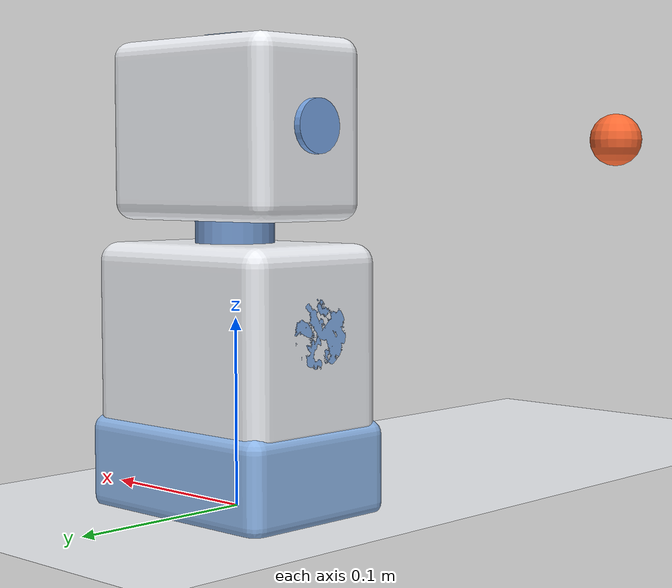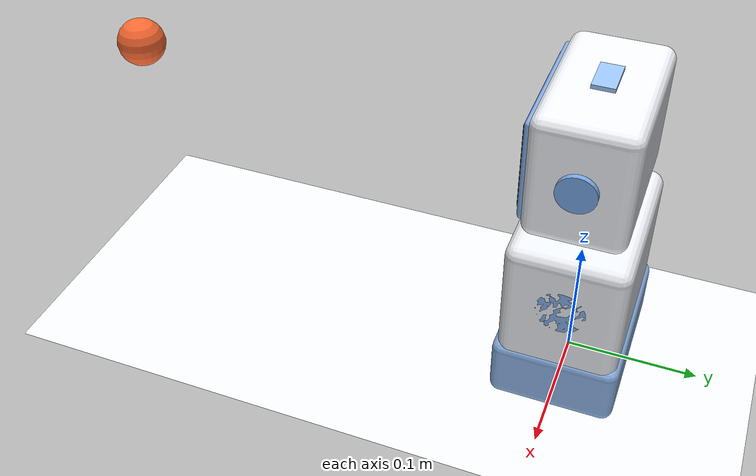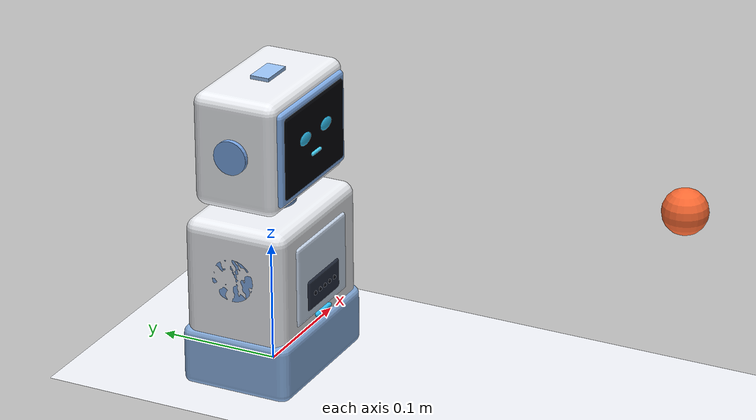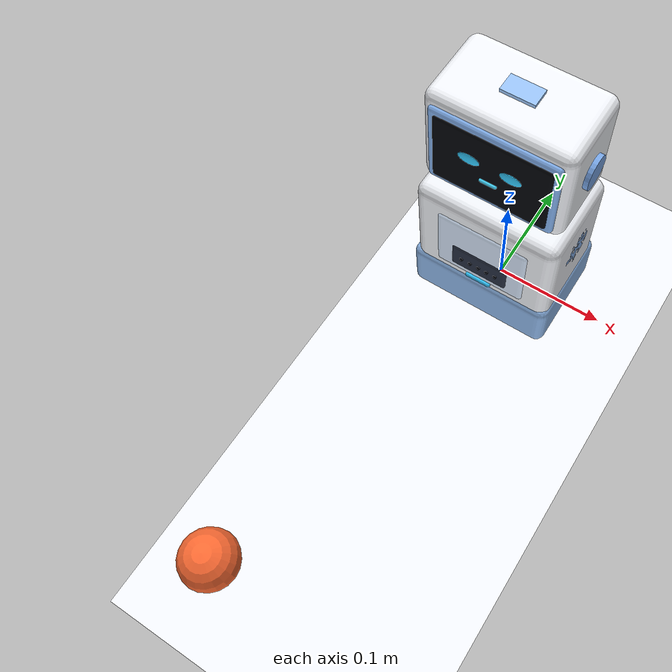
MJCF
<mujoco model="deskro_v1_cute_square_tv_visible_neck">
  <compiler angle="degree" autolimits="true" meshdir="assets"/>
  <option timestep="0.005" gravity="0 0 -9.81" integrator="implicitfast"/>

  <visual>
    <global azimuth="145" elevation="-14"/>
    <quality shadowsize="2048"/>
    <headlight ambient="0.38 0.39 0.42"
               diffuse="0.76 0.77 0.80"
               specular="0.24 0.24 0.24"/>
  </visual>

  <default>
    <joint damping="0.18" armature="0.003" frictionloss="0.003"/>
    <geom density="550" friction="0.8 0.1 0.1"
          contype="1" conaffinity="1"/>
  </default>

  <asset>
    <mesh name="base_square_mesh" file="base_square.obj"/>
    <mesh name="base_front_square_mesh" file="base_front_square.obj"/>
    <mesh name="torso_square_mesh" file="torso_square.obj"/>
    <mesh name="torso_panel_square_mesh" file="torso_panel_square.obj"/>
    <mesh name="speaker_square_mesh" file="speaker_square.obj"/>
    <mesh name="head_square_mesh" file="head_square.obj"/>
    <mesh name="bezel_square_mesh" file="bezel_square.obj"/>
    <mesh name="screen_square_mesh" file="screen_square.obj"/>
  </asset>

  <worldbody>
    <light name="key" pos="1.2 -1.4 2.2" dir="-0.5 0.6 -1"
           diffuse="0.90 0.89 0.88"/>
    <light name="fill" pos="-1 0.5 1.5" dir="0.5 -0.2 -1"
           diffuse="0.40 0.44 0.50"/>
    <geom name="floor" type="plane" size="2 2 0.05"
          rgba="0.95 0.96 0.98 1"/>

    <!-- Orange sphere: virtual user / target direction. -->
    <body name="target_marker" mocap="true" pos="0 -0.35 0.20">
      <geom name="target_geom" type="sphere" size="0.018"
            rgba="1 0.42 0.20 0.92"
            contype="0" conaffinity="0"/>
    </body>

    <body name="base" pos="0 0 0.022">
      <!-- Invisible collision/mass geometry. -->
      <geom name="base_geom" type="box"
            size="0.062 0.043 0.022"
            rgba="0 0 0 0"/>

      <!-- Stable rounded desk base. -->
      <geom name="base_shell_visual" type="mesh"
            mesh="base_square_mesh"
            rgba="0.56 0.72 0.92 1"
            contype="0" conaffinity="0" mass="0.000001"/>
      <geom name="base_front_visual" type="mesh"
            mesh="base_front_square_mesh"
            pos="0 -0.037 -0.004"
            rgba="0.44 0.62 0.86 1"
            contype="0" conaffinity="0" mass="0.000001"/>

      <body name="torso" pos="0 0 0.070">
        <!-- Original simple physics shell retained. -->
        <geom name="torso_geom" type="box"
              size="0.058 0.038 0.055"
              rgba="0 0 0 0"/>

        <!-- Compact rounded retro body. -->
        <geom name="torso_shell_visual" type="mesh"
              mesh="torso_square_mesh"
              pos="0 0 -0.004"
              rgba="0.94 0.95 0.97 1"
              contype="0" conaffinity="0" mass="0.000001"/>
        <geom name="torso_front_panel_visual" type="mesh"
              mesh="torso_panel_square_mesh"
              pos="0 -0.043 -0.004"
              rgba="0.83 0.89 0.97 1"
              contype="0" conaffinity="0" mass="0.000001"/>

        <!-- Side service panels, not fake arms. -->
        <geom name="left_side_panel_visual" type="cylinder"
              pos="-0.061 0 0.004" euler="0 90 0"
              size="0.018 0.003"
              rgba="0.52 0.69 0.92 1"
              contype="0" conaffinity="0" mass="0.000001"/>
        <geom name="right_side_panel_visual" type="cylinder"
              pos="0.061 0 0.004" euler="0 90 0"
              size="0.018 0.003"
              rgba="0.52 0.69 0.92 1"
              contype="0" conaffinity="0" mass="0.000001"/>

        <!-- Front speaker. -->
        <geom name="speaker_panel_visual" type="mesh"
              mesh="speaker_square_mesh"
              pos="0 -0.045 -0.017"
              rgba="0.15 0.18 0.25 1"
              contype="0" conaffinity="0" mass="0.000001"/>
        <geom name="speaker_hole_1" type="sphere"
              pos="-0.016 -0.047 -0.017" size="0.0020"
              rgba="0.03 0.04 0.07 1"
              contype="0" conaffinity="0" mass="0.000001"/>
        <geom name="speaker_hole_2" type="sphere"
              pos="-0.008 -0.047 -0.017" size="0.0020"
              rgba="0.03 0.04 0.07 1"
              contype="0" conaffinity="0" mass="0.000001"/>
        <geom name="speaker_hole_3" type="sphere"
              pos="0 -0.047 -0.017" size="0.0020"
              rgba="0.03 0.04 0.07 1"
              contype="0" conaffinity="0" mass="0.000001"/>
        <geom name="speaker_hole_4" type="sphere"
              pos="0.008 -0.047 -0.017" size="0.0020"
              rgba="0.03 0.04 0.07 1"
              contype="0" conaffinity="0" mass="0.000001"/>
        <geom name="speaker_hole_5" type="sphere"
              pos="0.016 -0.047 -0.017" size="0.0020"
              rgba="0.03 0.04 0.07 1"
              contype="0" conaffinity="0" mass="0.000001"/>
        <geom name="status_light_visual" type="capsule"
              fromto="-0.010 -0.046 -0.039 0.010 -0.046 -0.039"
              size="0.0020"
              rgba="0.20 0.78 1.00 1"
              contype="0" conaffinity="0" mass="0.000001"/>

        <!--
          The two neck joints are nearly stacked inside the body/head shells.
          This keeps full 2-DOF motion while making the visible neck very short.
        -->
        <body name="neck_yaw" pos="0 0 0.056">
          <joint name="joint_head_yaw" type="hinge"
                 axis="0 0 1" range="-60 60"
                 damping="0.12" armature="0.002" frictionloss="0.004"/>
          <geom name="yaw_servo" type="cylinder"
                size="0.018 0.008" rgba="0 0 0 0"
                contype="0" conaffinity="0" mass="0.000001"/>
          <geom name="short_neck_collar_visual" type="cylinder"
                size="0.021 0.012"
                rgba="0.46 0.61 0.82 1"
                contype="0" conaffinity="0" mass="0.000001"/>
          <geom name="neck_top_trim_visual" type="cylinder"
                pos="0 0 0.010"
                size="0.024 0.003"
                rgba="0.63 0.77 0.95 1"
                contype="0" conaffinity="0" mass="0.000001"/>

          <body name="neck_pitch" pos="0 0 0.006">
            <!-- DESKRO faces -Y. Positive pitch = look up. -->
            <joint name="joint_head_pitch" type="hinge"
                   axis="-1 0 0" range="-25 25"
                   damping="0.16" armature="0.003" frictionloss="0.006"/>
            <geom name="pitch_servo" type="cylinder"
                  euler="0 90 0" size="0.016 0.008"
                  rgba="0 0 0 0" contype="0" conaffinity="0"
                  mass="0.000001"/>

            <body name="head" pos="0 0 0.045" gravcomp="1">
              <!-- Explicit 90 g head inertia. The SG90 is modeled as a
                   position servo, so gravcomp prevents passive head drop. -->
              <inertial pos="0 0 0" mass="0.090"
                        diaginertia="0.0000723 0.0001316 0.0001030"/>
              <!-- Invisible non-colliding head shape. -->
              <geom name="head_shell" type="box"
                    size="0.052 0.027 0.041"
                    rgba="0 0 0 0"
                    contype="0" conaffinity="0" mass="0.000001"/>

              <!-- Rounded retro CRT television shell. -->
              <geom name="retro_head_shell_visual" type="mesh"
                    mesh="head_square_mesh"
                    rgba="0.95 0.96 0.98 1"
                    contype="0" conaffinity="0" mass="0.000001"/>

              <!-- Pastel blue screen bezel. -->
              <geom name="screen_bezel_visual" type="mesh"
                    mesh="bezel_square_mesh"
                    pos="0 -0.0360 0"
                    rgba="0.52 0.70 0.94 1"
                    contype="0" conaffinity="0" mass="0.000001"/>

              <!-- Dark CRT screen. -->
              <geom name="oled_panel" type="mesh"
                    mesh="screen_square_mesh"
                    pos="0 -0.0390 0"
                    rgba="0.012 0.018 0.032 1"
                    contype="0" conaffinity="0" mass="0.000001"/>

              <!-- Expression geoms expected by deskro_env.py. -->
              <geom name="left_eye" type="ellipsoid"
                    pos="-0.017 -0.0413 0.007"
                    size="0.0090 0.0013 0.0050"
                    rgba="0.20 0.80 1.00 1"
                    contype="0" conaffinity="0" mass="0.000001"/>
              <geom name="right_eye" type="ellipsoid"
                    pos="0.017 -0.0413 0.007"
                    size="0.0090 0.0013 0.0050"
                    rgba="0.20 0.80 1.00 1"
                    contype="0" conaffinity="0" mass="0.000001"/>
              <geom name="mouth_visual" type="capsule"
                    fromto="-0.006 -0.0416 -0.010 0.006 -0.0416 -0.010"
                    size="0.0015"
                    rgba="0.28 0.85 1.00 1"
                    contype="0" conaffinity="0" mass="0.000001"/>

              <!-- Retro side dials. -->
              <geom name="left_dial_visual" type="cylinder"
                    pos="-0.061 0 0.001" euler="0 90 0"
                    size="0.014 0.003"
                    rgba="0.47 0.65 0.90 1"
                    contype="0" conaffinity="0" mass="0.000001"/>
              <geom name="right_dial_visual" type="cylinder"
                    pos="0.061 0 0.001" euler="0 90 0"
                    size="0.014 0.003"
                    rgba="0.47 0.65 0.90 1"
                    contype="0" conaffinity="0" mass="0.000001"/>

              <!-- Tiny retro top indicator, kept low and simple. -->
              <geom name="top_indicator_visual" type="box"
                    pos="0 0 0.047"
                    size="0.014 0.008 0.003"
                    rgba="0.61 0.77 0.97 1"
                    contype="0" conaffinity="0" mass="0.000001"/>
            </body>
          </body>
        </body>
      </body>
    </body>
  </worldbody>

  <actuator>
    <!-- Moderately faster than the previous slow visual model, but still stable. -->
    <position name="act_head_yaw" joint="joint_head_yaw"
              kp="28"
              ctrllimited="true"
              ctrlrange="-1.0471975512 1.0471975512"
              forcelimited="true"
              forcerange="-0.35 0.35"/>
    <position name="act_head_pitch" joint="joint_head_pitch"
              kp="32"
              ctrllimited="true"
              ctrlrange="-0.4363323130 0.4363323130"
              forcelimited="true"
              forcerange="-0.35 0.35"/>
  </actuator>

  <sensor>
    <jointpos name="head_yaw_pos" joint="joint_head_yaw"/>
    <jointpos name="head_pitch_pos" joint="joint_head_pitch"/>
    <jointvel name="head_yaw_vel" joint="joint_head_yaw"/>
    <jointvel name="head_pitch_vel" joint="joint_head_pitch"/>
  </sensor>
</mujoco>
